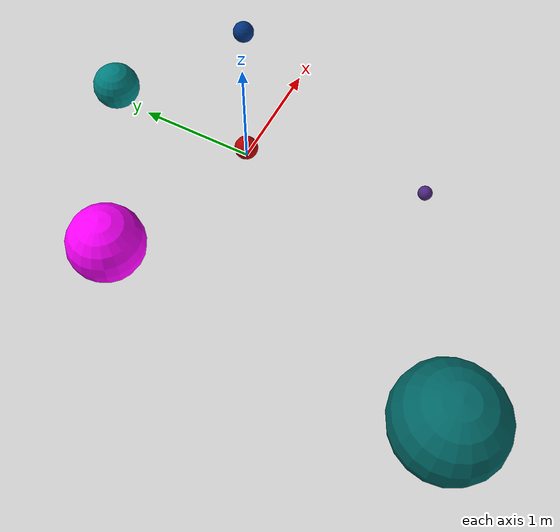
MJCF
<mujoco>
    <worldbody>
        <body name="red_ball" pos="0 0 0.1" euler="0 0 0">
            <joint type = "free"/>
            <geom type="sphere" size=".1" rgba="0.7 0 0 1"/>
        </body>

        <body name="blue_small_ball" pos="1.2 0.7 0.1" euler="0 0 0">
            <joint type = "free"/>
            <geom type="sphere" size=".1" rgba="0 0.2 0.5 1"/>
        </body>

        <body name="blue_medium_ball" pos="0 1.3 .2" euler="0 0 30">
            <joint type = "free"/>
            <geom type="sphere" size=".2" rgba="0 .5 .5 1"/>
        </body>

        <body name="pink_ball" pos="-1.4 0.4 .3" euler="0 0 90">
            <joint type = "free"/>
            <geom type="sphere" size=".3" rgba="1 0 1 1"/>
        </body>

        <body name="purple_ball" pos="0.3 -1.5 .06" euler="0 0 0">
            <joint type = "free"/>
            <geom type="sphere" size=".06" rgba=".3 .15 .5 1"/>
        </body>

        <body name="big_ball" pos="-1.5 -2.3 .4" euler="0 0 0">
            <joint type = "free"/>
            <geom type="sphere" size=".4" rgba="0 .4 .4 1"/>
        </body>

    </worldbody>
</mujoco>
